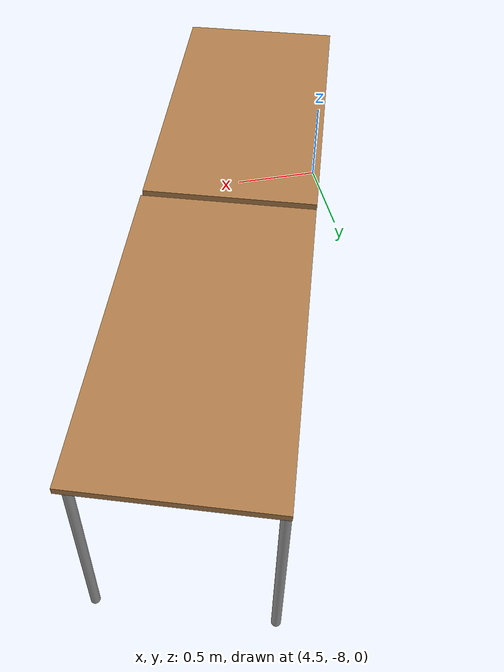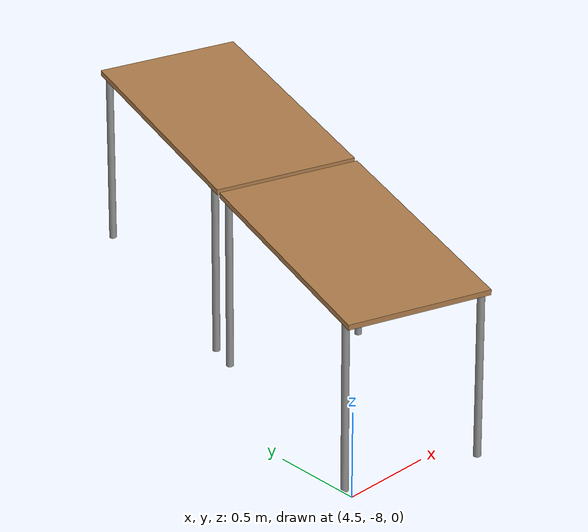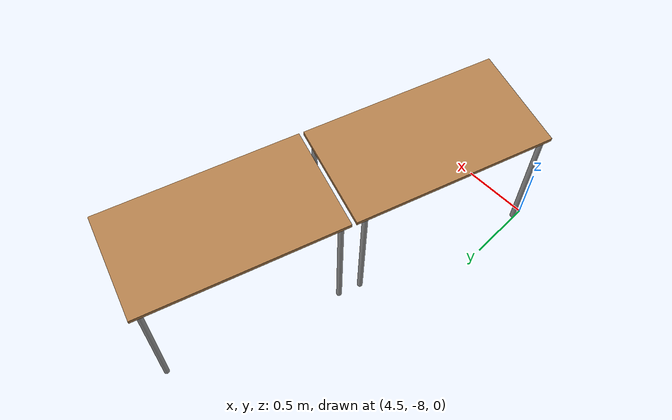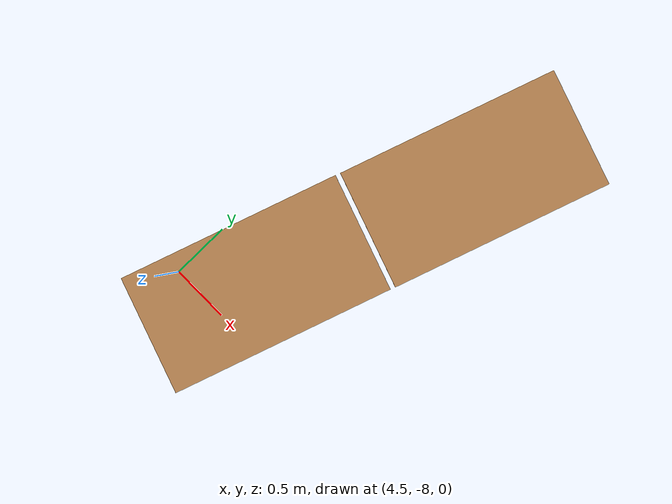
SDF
<sdf version="1.7">
 <world name="default">
  <model name="table">
   <static>1</static>
   <link name="link">
    <collision name="surface">
     <pose>0 0 1 0 -0 0</pose>
     <geometry><box><size>1.5 0.8 0.03</size></box></geometry>
     <surface><friction><ode><mu>0.6</mu><mu2>0.6</mu2></ode></friction></surface>
    </collision>
    <visual name="visual1">
     <pose>0 0 1 0 -0 0</pose>
     <geometry><box><size>1.5 0.8 0.03</size></box></geometry>
     <material>
      <script><uri>file://media/materials/scripts/gazebo.material</uri><name>Gazebo/Wood</name></script>
     </material>
    </visual>
    <collision name="front_left_leg">
     <pose>0.68 0.38 0.5 0 -0 0</pose>
     <geometry><cylinder><radius>0.02</radius><length>1</length></cylinder></geometry>
    </collision>
    <visual name="front_left_leg">
     <pose>0.68 0.38 0.5 0 -0 0</pose>
     <geometry><cylinder><radius>0.02</radius><length>1</length></cylinder></geometry>
     <material>
      <script><uri>file://media/materials/scripts/gazebo.material</uri><name>Gazebo/Grey</name></script>
     </material>
    </visual>
    <collision name="front_right_leg">
     <pose>0.68 -0.38 0.5 0 -0 0</pose>
     <geometry><cylinder><radius>0.02</radius><length>1</length></cylinder></geometry>
    </collision>
    <visual name="front_right_leg">
     <pose>0.68 -0.38 0.5 0 -0 0</pose>
     <geometry><cylinder><radius>0.02</radius><length>1</length></cylinder></geometry>
     <material>
      <script><uri>file://media/materials/scripts/gazebo.material</uri><name>Gazebo/Grey</name></script>
     </material>
    </visual>
    <collision name="back_right_leg">
     <pose>-0.68 -0.38 0.5 0 -0 0</pose>
     <geometry><cylinder><radius>0.02</radius><length>1</length></cylinder></geometry>
    </collision>
    <visual name="back_right_leg">
     <pose>-0.68 -0.38 0.5 0 -0 0</pose>
     <geometry><cylinder><radius>0.02</radius><length>1</length></cylinder></geometry>
     <material>
      <script><uri>file://media/materials/scripts/gazebo.material</uri><name>Gazebo/Grey</name></script>
     </material>
    </visual>
    <collision name="back_left_leg">
     <pose>-0.68 0.38 0.5 0 -0 0</pose>
     <geometry><cylinder><radius>0.02</radius><length>1</length></cylinder></geometry>
    </collision>
    <visual name="back_left_leg">
     <pose>-0.68 0.38 0.5 0 -0 0</pose>
     <geometry><cylinder><radius>0.02</radius><length>1</length></cylinder></geometry>
     <material>
      <script><uri>file://media/materials/scripts/gazebo.material</uri><name>Gazebo/Grey</name></script>
     </material>
    </visual>
   </link>
   <pose>5.58568 -5.9524 0 0 -0 1.246</pose>
  </model>
  <model name="table_clone">
   <static>1</static>
   <link name="link">
    <collision name="surface">
     <pose>0 0 1 0 -0 0</pose>
     <geometry><box><size>1.5 0.8 0.03</size></box></geometry>
     <surface><friction><ode><mu>0.6</mu><mu2>0.6</mu2></ode></friction></surface>
    </collision>
    <visual name="visual1">
     <pose>0 0 1 0 -0 0</pose>
     <geometry><box><size>1.5 0.8 0.03</size></box></geometry>
     <material>
      <script><uri>file://media/materials/scripts/gazebo.material</uri><name>Gazebo/Wood</name></script>
     </material>
    </visual>
    <collision name="front_left_leg">
     <pose>0.68 0.38 0.5 0 -0 0</pose>
     <geometry><cylinder><radius>0.02</radius><length>1</length></cylinder></geometry>
    </collision>
    <visual name="front_left_leg">
     <pose>0.68 0.38 0.5 0 -0 0</pose>
     <geometry><cylinder><radius>0.02</radius><length>1</length></cylinder></geometry>
     <material>
      <script><uri>file://media/materials/scripts/gazebo.material</uri><name>Gazebo/Grey</name></script>
     </material>
    </visual>
    <collision name="front_right_leg">
     <pose>0.68 -0.38 0.5 0 -0 0</pose>
     <geometry><cylinder><radius>0.02</radius><length>1</length></cylinder></geometry>
    </collision>
    <visual name="front_right_leg">
     <pose>0.68 -0.38 0.5 0 -0 0</pose>
     <geometry><cylinder><radius>0.02</radius><length>1</length></cylinder></geometry>
     <material>
      <script><uri>file://media/materials/scripts/gazebo.material</uri><name>Gazebo/Grey</name></script>
     </material>
    </visual>
    <collision name="back_right_leg">
     <pose>-0.68 -0.38 0.5 0 -0 0</pose>
     <geometry><cylinder><radius>0.02</radius><length>1</length></cylinder></geometry>
    </collision>
    <visual name="back_right_leg">
     <pose>-0.68 -0.38 0.5 0 -0 0</pose>
     <geometry><cylinder><radius>0.02</radius><length>1</length></cylinder></geometry>
     <material>
      <script><uri>file://media/materials/scripts/gazebo.material</uri><name>Gazebo/Grey</name></script>
     </material>
    </visual>
    <collision name="back_left_leg">
     <pose>-0.68 0.38 0.5 0 -0 0</pose>
     <geometry><cylinder><radius>0.02</radius><length>1</length></cylinder></geometry>
    </collision>
    <visual name="back_left_leg">
     <pose>-0.68 0.38 0.5 0 -0 0</pose>
     <geometry><cylinder><radius>0.02</radius><length>1</length></cylinder></geometry>
     <material>
      <script><uri>file://media/materials/scripts/gazebo.material</uri><name>Gazebo/Grey</name></script>
     </material>
    </visual>
   </link>
   <pose>5.09476 -7.405 0 0 -0 1.246</pose>
  </model>
 </world>
</sdf>
